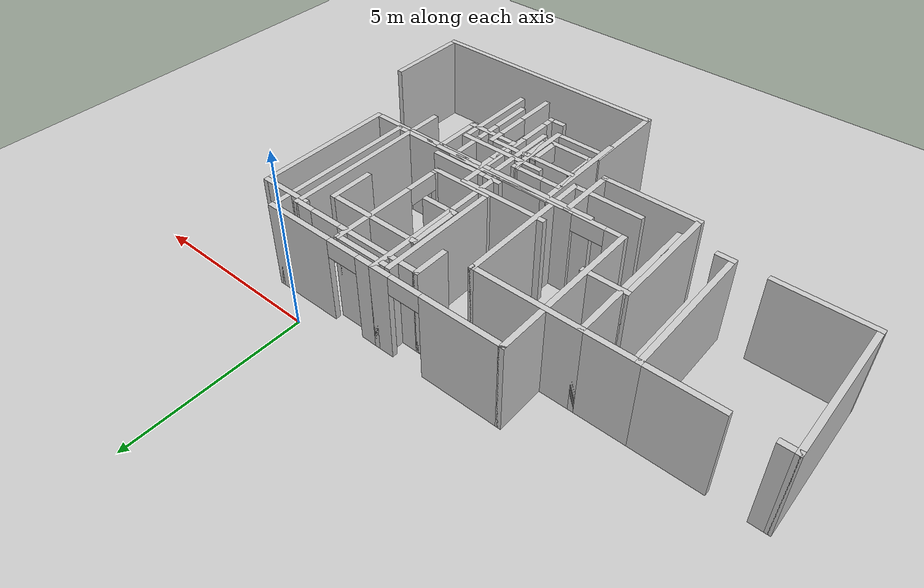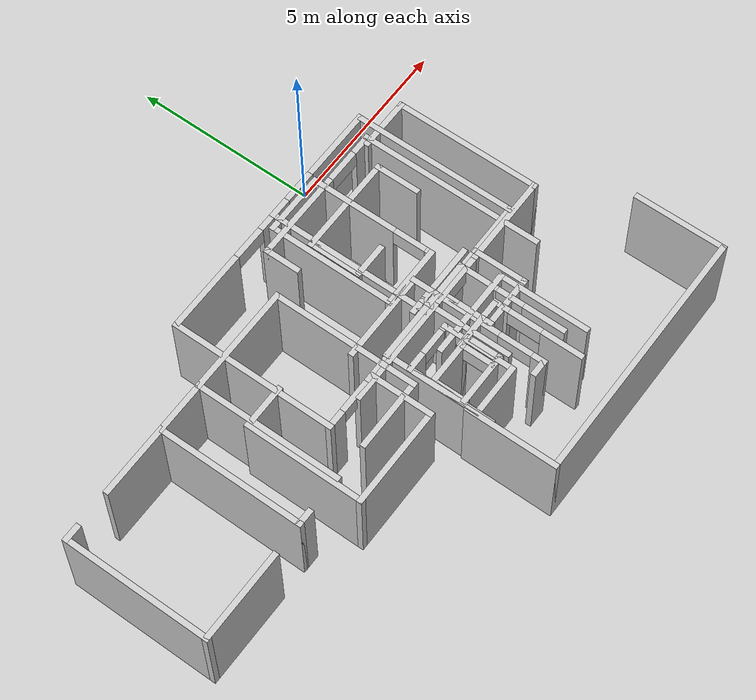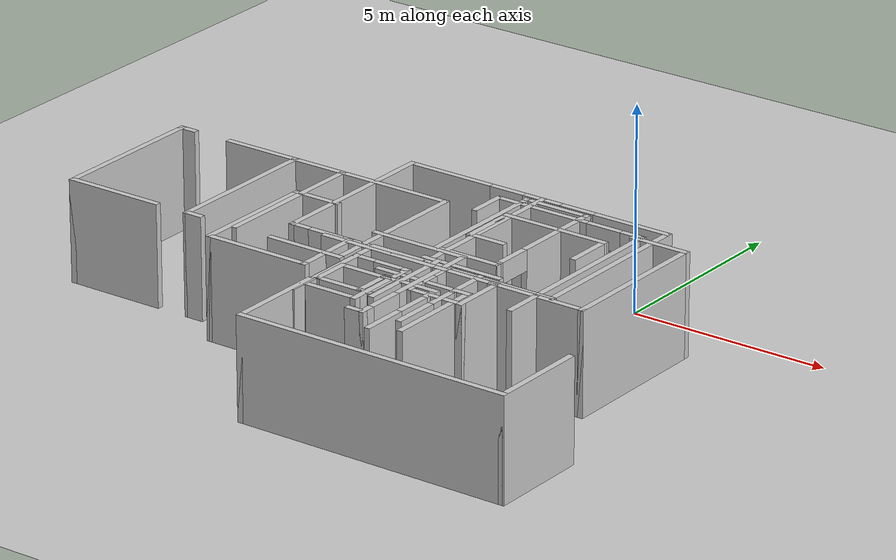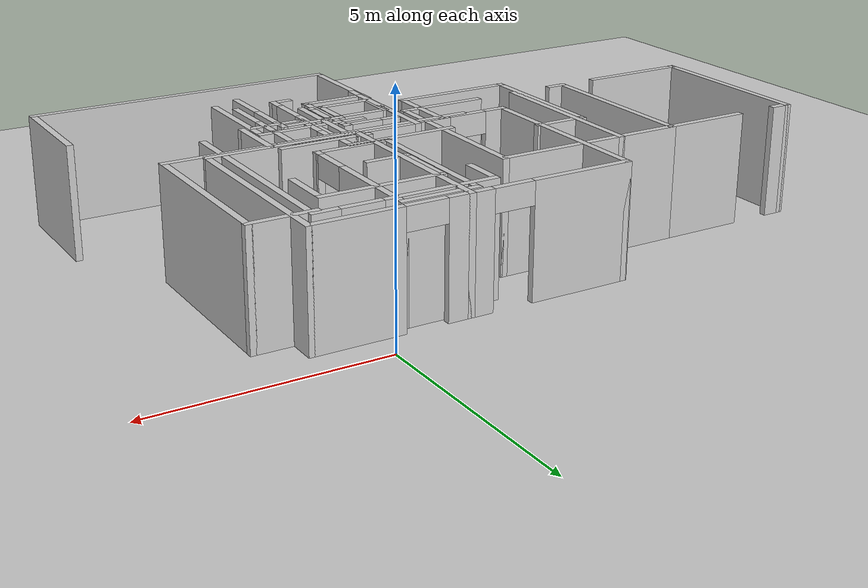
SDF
<sdf version="1.9">
 <world name="default">
  <model name="ground_plane">
   <static>true</static>
   <link name="link">
    <collision name="collision">
     <geometry><plane><normal>0 0 1</normal><size>100 100</size></plane></geometry>
     <surface><friction><ode><mu>100</mu><mu2>50</mu2></ode></friction></surface>
    </collision>
    <visual name="visual">
     <cast_shadows>false</cast_shadows>
     <geometry><plane><normal>0 0 1</normal><size>100 100</size></plane></geometry>
     <material><diffuse>0.8 0.8 0.8 1</diffuse></material>
    </visual>
   </link>
  </model>
  <model name="cma_escritorio">
   <pose>-7.3949999999999996 -4.04 0 0 0 0</pose>
   <link name="Wall_11">
    <collision name="Wall_11_Collision">
     <geometry><box><size>2 0.14999999999999999 2.5</size></box></geometry>
     <pose>0 0 1.25 0 0 0</pose>
    </collision>
    <visual name="Wall_11_Visual">
     <pose>0 0 1.25 0 0 0</pose>
     <geometry><box><size>2 0.14999999999999999 2.5</size></box></geometry>
     <material><diffuse>0.8 0.8 0.8 1</diffuse><ambient>1 1 1 1</ambient></material>
    </visual>
    <pose>-1.3999999999999999 1.9299999999999999 0 0 0 3.1415899999999999</pose>
   </link>
   <link name="Wall_2">
    <collision name="Wall_2_Collision">
     <geometry><box><size>4 0.14999999999999999 2.5</size></box></geometry>
     <pose>0 0 1.25 0 0 0</pose>
    </collision>
    <visual name="Wall_2_Visual">
     <pose>0 0 1.25 0 0 0</pose>
     <geometry><box><size>4 0.14999999999999999 2.5</size></box></geometry>
     <material><diffuse>0.8 0.8 0.8 1</diffuse><ambient>1 1 1 1</ambient></material>
    </visual>
    <pose>0.875 0.0050000000000000001 0 0 0 1.5708</pose>
   </link>
   <link name="Wall_25">
    <collision name="Wall_25_Collision">
     <geometry><box><size>2.5 0.14999999999999999 2.5</size></box></geometry>
     <pose>0 0 1.25 0 0 0</pose>
    </collision>
    <visual name="Wall_25_Visual">
     <pose>0 0 1.25 0 0 0</pose>
     <geometry><box><size>2.5 0.14999999999999999 2.5</size></box></geometry>
     <material><diffuse>0.8 0.8 0.8 1</diffuse><ambient>1 1 1 1</ambient></material>
    </visual>
    <pose>-2.5499999999999998 -1.9299999999999999 0 0 0 3.1415899999999999</pose>
   </link>
   <link name="Wall_26">
    <collision name="Wall_26_Collision">
     <geometry><box><size>4 0.14999999999999999 2.5</size></box></geometry>
     <pose>0 0 1.25 0 0 0</pose>
    </collision>
    <visual name="Wall_26_Visual">
     <pose>0 0 1.25 0 0 0</pose>
     <geometry><box><size>4 0.14999999999999999 2.5</size></box></geometry>
     <material><diffuse>0.8 0.8 0.8 1</diffuse><ambient>1 1 1 1</ambient></material>
    </visual>
    <pose>-3.7250000000000001 -0.0050000000000000001 0 0 0 1.5708</pose>
   </link>
   <link name="Wall_27">
    <collision name="Wall_27_Collision">
     <geometry><box><size>0.5 0.14999999999999999 2.5</size></box></geometry>
     <pose>0 0 1.25 0 0 0</pose>
    </collision>
    <visual name="Wall_27_Visual">
     <pose>0 0 1.25 0 0 0</pose>
     <geometry><box><size>0.5 0.14999999999999999 2.5</size></box></geometry>
     <material><diffuse>0.8 0.8 0.8 1</diffuse><ambient>1 1 1 1</ambient></material>
    </visual>
    <pose>-3.5499999999999998 1.9199999999999999 0 0 0 0</pose>
   </link>
   <link name="Wall_3">
    <collision name="Wall_3_Collision">
     <geometry><box><size>3 0.14999999999999999 2.5</size></box></geometry>
     <pose>0 0 1.25 0 0 0</pose>
    </collision>
    <visual name="Wall_3_Visual">
     <pose>0 0 1.25 0 0 0</pose>
     <geometry><box><size>3 0.14999999999999999 2.5</size></box></geometry>
     <material><diffuse>0.8 0.8 0.8 1</diffuse><ambient>1 1 1 1</ambient></material>
    </visual>
    <pose>2.2999999999999998 1.9299999999999999 0 0 0 0</pose>
   </link>
   <link name="Wall_4">
    <collision name="Wall_4_Collision">
     <geometry><box><size>4 0.14999999999999999 2.5</size></box></geometry>
     <pose>0 0 1.25 0 0 0</pose>
    </collision>
    <visual name="Wall_4_Visual">
     <pose>0 0 1.25 0 0 0</pose>
     <geometry><box><size>4 0.14999999999999999 2.5</size></box></geometry>
     <material><diffuse>0.8 0.8 0.8 1</diffuse><ambient>1 1 1 1</ambient></material>
    </visual>
    <pose>3.7250000000000001 0.0050000000000000001 0 0 0 -1.5708</pose>
   </link>
   <link name="Wall_5">
    <collision name="Wall_5_Collision">
     <geometry><box><size>2 0.14999999999999999 2.5</size></box></geometry>
     <pose>0 0 1.25 0 0 0</pose>
    </collision>
    <visual name="Wall_5_Visual">
     <pose>0 0 1.25 0 0 0</pose>
     <geometry><box><size>2 0.14999999999999999 2.5</size></box></geometry>
     <material><diffuse>0.8 0.8 0.8 1</diffuse><ambient>1 1 1 1</ambient></material>
    </visual>
    <pose>2.7999999999999998 -1.9199999999999999 0 0 0 3.1415899999999999</pose>
   </link>
   <link name="Wall_7">
    <collision name="Wall_7_Collision">
     <geometry><box><size>1.5 0.14999999999999999 2.5</size></box></geometry>
     <pose>0 0 1.25 0 0 0</pose>
    </collision>
    <visual name="Wall_7_Visual">
     <pose>0 0 1.25 0 0 0</pose>
     <geometry><box><size>1.5 0.14999999999999999 2.5</size></box></geometry>
     <material><diffuse>0.8 0.8 0.8 1</diffuse><ambient>1 1 1 1</ambient></material>
    </visual>
    <pose>0.20000000000000001 1.9299999999999999 0 0 0 3.1415899999999999</pose>
   </link>
   <link name="Wall_8">
    <collision name="Wall_8_Collision">
     <geometry><box><size>4 0.14999999999999999 2.5</size></box></geometry>
     <pose>0 0 1.25 0 0 0</pose>
    </collision>
    <visual name="Wall_8_Visual">
     <pose>0 0 1.25 0 0 0</pose>
     <geometry><box><size>4 0.14999999999999999 2.5</size></box></geometry>
     <material><diffuse>0.8 0.8 0.8 1</diffuse><ambient>1 1 1 1</ambient></material>
    </visual>
    <pose>-0.47499999999999998 0.0050000000000000001 0 0 0 -1.5708</pose>
   </link>
   <link name="Wall_9">
    <collision name="Wall_9_Collision">
     <geometry><box><size>0.5 0.14999999999999999 2.5</size></box></geometry>
     <pose>0 0 1.25 0 0 0</pose>
    </collision>
    <visual name="Wall_9_Visual">
     <pose>0 0 1.25 0 0 0</pose>
     <geometry><box><size>0.5 0.14999999999999999 2.5</size></box></geometry>
     <material><diffuse>0.8 0.8 0.8 1</diffuse><ambient>1 1 1 1</ambient></material>
    </visual>
    <pose>-0.29999999999999999 -1.9199999999999999 0 0 0 0</pose>
   </link>
   <static>true</static>
  </model>
  <model name="cma_banheiro">
   <pose>-0.81999999999999995 -2.5950000000000002 0 0 0 0</pose>
   <link name="Wall_0">
    <collision name="Wall_0_Collision">
     <geometry><box><size>1 0.14999999999999999 2.5</size></box></geometry>
     <pose>0 0 1.25 0 0 0</pose>
    </collision>
    <visual name="Wall_0_Visual">
     <pose>0 0 1.25 0 0 0</pose>
     <geometry><box><size>1 0.14999999999999999 2.5</size></box></geometry>
     <material><diffuse>0.8 0.8 0.8 1</diffuse><ambient>1 1 1 1</ambient></material>
    </visual>
    <pose>-0.875 -0.67500000000000004 0 0 0 3.1415899999999999</pose>
   </link>
   <link name="Wall_1">
    <collision name="Wall_1_Collision">
     <geometry><box><size>1.5 0.14999999999999999 2.5</size></box></geometry>
     <pose>0 0 1.25 0 0 0</pose>
    </collision>
    <visual name="Wall_1_Visual">
     <pose>0 0 1.25 0 0 0</pose>
     <geometry><box><size>1.5 0.14999999999999999 2.5</size></box></geometry>
     <material><diffuse>0.8 0.8 0.8 1</diffuse><ambient>1 1 1 1</ambient></material>
    </visual>
    <pose>-1.3 0 0 0 0 1.5708</pose>
   </link>
   <link name="Wall_2">
    <collision name="Wall_2_Collision">
     <geometry><box><size>2.75 0.14999999999999999 2.5</size></box></geometry>
     <pose>0 0 1.25 0 0 0</pose>
    </collision>
    <visual name="Wall_2_Visual">
     <pose>0 0 1.25 0 0 0</pose>
     <geometry><box><size>2.75 0.14999999999999999 2.5</size></box></geometry>
     <material><diffuse>0.8 0.8 0.8 1</diffuse><ambient>1 1 1 1</ambient></material>
    </visual>
    <pose>0 0.67500000000000004 0 0 0 0</pose>
   </link>
   <link name="Wall_4">
    <collision name="Wall_4_Collision">
     <geometry><box><size>1.25 0.14999999999999999 2.5</size></box></geometry>
     <pose>0 0 1.25 0 0 0</pose>
    </collision>
    <visual name="Wall_4_Visual">
     <pose>0 0 1.25 0 0 0</pose>
     <geometry><box><size>1.25 0.14999999999999999 2.5</size></box></geometry>
     <material><diffuse>0.8 0.8 0.8 1</diffuse><ambient>1 1 1 1</ambient></material>
    </visual>
    <pose>1.3 0.125 0 0 0 -1.5708</pose>
   </link>
   <static>true</static>
  </model>
  <model name="cma_varanda1">
   <pose>-1.49 -2.6150000000000002 0 0 0 0</pose>
   <link name="Wall_0">
    <pose>0.80000000000000004 0 0 0 0 -1.5708</pose>
    <visual name="Wall_0_Visual_0">
     <pose>-0.55249999999999999 0 1.25 0 0 0</pose>
     <geometry><box><size>2.395 0.14999999999999999 2.5</size></box></geometry>
     <material><diffuse>0.8 0.8 0.8 1</diffuse><ambient>1 1 1 1</ambient></material>
    </visual>
    <collision name="Wall_0_Collision_0">
     <geometry><box><size>2.395 0.14999999999999999 2.5</size></box></geometry>
     <pose>-0.55249999999999999 0 1.25 0 0 0</pose>
    </collision>
    <visual name="Wall_0_Visual_1">
     <pose>1.6375 0 1.25 0 0 0</pose>
     <geometry><box><size>0.22500000000000001 0.14999999999999999 2.5</size></box></geometry>
     <material><diffuse>0.8 0.8 0.8 1</diffuse><ambient>1 1 1 1</ambient></material>
    </visual>
    <collision name="Wall_0_Collision_1">
     <geometry><box><size>0.22500000000000001 0.14999999999999999 2.5</size></box></geometry>
     <pose>1.6375 0 1.25 0 0 0</pose>
    </collision>
    <visual name="Wall_0_Visual_2">
     <pose>1.085 0 2.25 0 0 0</pose>
     <geometry><box><size>0.88 0.14999999999999999 0.5</size></box></geometry>
     <material><diffuse>0.8 0.8 0.8 1</diffuse><ambient>1 1 1 1</ambient></material>
    </visual>
    <collision name="Wall_0_Collision_2">
     <geometry><box><size>0.88 0.14999999999999999 0.5</size></box></geometry>
     <pose>1.085 0 2.25 0 0 0</pose>
    </collision>
   </link>
   <link name="Wall_1">
    <collision name="Wall_1_Collision">
     <geometry><box><size>1.75 0.14999999999999999 2.5</size></box></geometry>
     <pose>0 0 1.25 0 0 0</pose>
    </collision>
    <visual name="Wall_1_Visual">
     <pose>0 0 1.25 0 0 0</pose>
     <geometry><box><size>1.75 0.14999999999999999 2.5</size></box></geometry>
     <material><diffuse>0.8 0.8 0.8 1</diffuse><ambient>1 1 1 1</ambient></material>
    </visual>
    <pose>0 -1.675 0 0 0 3.1415899999999999</pose>
   </link>
   <link name="Wall_2">
    <collision name="Wall_2_Collision">
     <geometry><box><size>3.5 0.14999999999999999 2.5</size></box></geometry>
     <pose>0 0 1.25 0 0 0</pose>
    </collision>
    <visual name="Wall_2_Visual">
     <pose>0 0 1.25 0 0 0</pose>
     <geometry><box><size>3.5 0.14999999999999999 2.5</size></box></geometry>
     <material><diffuse>0.8 0.8 0.8 1</diffuse><ambient>1 1 1 1</ambient></material>
    </visual>
    <pose>-0.80000000000000004 0 0 0 0 1.5708</pose>
   </link>
   <link name="Wall_3">
    <collision name="Wall_3_Collision">
     <geometry><box><size>1.75 0.14999999999999999 2.5</size></box></geometry>
     <pose>0 0 1.25 0 0 0</pose>
    </collision>
    <visual name="Wall_3_Visual">
     <pose>0 0 1.25 0 0 0</pose>
     <geometry><box><size>1.75 0.14999999999999999 2.5</size></box></geometry>
     <material><diffuse>0.8 0.8 0.8 1</diffuse><ambient>1 1 1 1</ambient></material>
    </visual>
    <pose>0 1.675 0 0 0 0</pose>
   </link>
   <static>true</static>
  </model>
  <model name="cma_quartos">
   <pose>-2.6549999999999998 -3.7149999999999999 0 0 0 0</pose>
   <link name="Wall_0">
    <collision name="Wall_0_Collision">
     <geometry><box><size>4.5 0.14999999999999999 2.5</size></box></geometry>
     <pose>0 0 1.25 0 0 0</pose>
    </collision>
    <visual name="Wall_0_Visual">
     <pose>0 0 1.25 0 0 0</pose>
     <geometry><box><size>4.5 0.14999999999999999 2.5</size></box></geometry>
     <material><diffuse>0.8 0.8 0.8 1</diffuse><ambient>1 1 1 1</ambient></material>
    </visual>
    <pose>0.64500000000000002 0.81000000000000005 0 0 0 -1.5708</pose>
   </link>
   <link name="Wall_1">
    <pose>-1.155 -1.365 0 0 0 3.1415899999999999</pose>
    <visual name="Wall_1_Visual_0">
     <pose>-0.72250000000000003 0 1.25 0 0 0</pose>
     <geometry><box><size>2.3050000000000002 0.14999999999999999 2.5</size></box></geometry>
     <material><diffuse>0.8 0.8 0.8 1</diffuse><ambient>1 1 1 1</ambient></material>
    </visual>
    <collision name="Wall_1_Collision_0">
     <geometry><box><size>2.3050000000000002 0.14999999999999999 2.5</size></box></geometry>
     <pose>-0.72250000000000003 0 1.25 0 0 0</pose>
    </collision>
    <visual name="Wall_1_Visual_1">
     <pose>1.6025 0 1.25 0 0 0</pose>
     <geometry><box><size>0.54500000000000004 0.14999999999999999 2.5</size></box></geometry>
     <material><diffuse>0.8 0.8 0.8 1</diffuse><ambient>1 1 1 1</ambient></material>
    </visual>
    <collision name="Wall_1_Collision_1">
     <geometry><box><size>0.54500000000000004 0.14999999999999999 2.5</size></box></geometry>
     <pose>1.6025 0 1.25 0 0 0</pose>
    </collision>
    <visual name="Wall_1_Visual_2">
     <pose>0.88 0 2.25 0 0 0</pose>
     <geometry><box><size>0.90000000000000002 0.14999999999999999 0.5</size></box></geometry>
     <material><diffuse>0.8 0.8 0.8 1</diffuse><ambient>1 1 1 1</ambient></material>
    </visual>
    <collision name="Wall_1_Collision_2">
     <geometry><box><size>0.90000000000000002 0.14999999999999999 0.5</size></box></geometry>
     <pose>0.88 0 2.25 0 0 0</pose>
    </collision>
   </link>
   <link name="Wall_10">
    <collision name="Wall_10_Collision">
     <geometry><box><size>1.75 0.14999999999999999 2.5</size></box></geometry>
     <pose>0 0 1.25 0 0 0</pose>
    </collision>
    <visual name="Wall_10_Visual">
     <pose>0 0 1.25 0 0 0</pose>
     <geometry><box><size>1.75 0.14999999999999999 2.5</size></box></geometry>
     <material><diffuse>0.8 0.8 0.8 1</diffuse><ambient>1 1 1 1</ambient></material>
    </visual>
    <pose>-1.395 -2.1850000000000001 0 0 0 -1.5708</pose>
   </link>
   <link name="Wall_11">
    <collision name="Wall_11_Collision">
     <geometry><box><size>2.75 0.14999999999999999 2.5</size></box></geometry>
     <pose>0 0 1.25 0 0 0</pose>
    </collision>
    <visual name="Wall_11_Visual">
     <pose>0 0 1.25 0 0 0</pose>
     <geometry><box><size>2.75 0.14999999999999999 2.5</size></box></geometry>
     <material><diffuse>0.8 0.8 0.8 1</diffuse><ambient>1 1 1 1</ambient></material>
    </visual>
    <pose>-2.6949999999999998 -2.9849999999999999 0 0 0 3.1415899999999999</pose>
   </link>
   <link name="Wall_12">
    <collision name="Wall_12_Collision">
     <geometry><box><size>3.25 0.14999999999999999 2.5</size></box></geometry>
     <pose>0 0 1.25 0 0 0</pose>
    </collision>
    <visual name="Wall_12_Visual">
     <pose>0 0 1.25 0 0 0</pose>
     <geometry><box><size>3.25 0.14999999999999999 2.5</size></box></geometry>
     <material><diffuse>0.8 0.8 0.8 1</diffuse><ambient>1 1 1 1</ambient></material>
    </visual>
    <pose>-3.9950000000000001 -1.4350000000000001 0 0 0 1.5708</pose>
   </link>
   <link name="Wall_13">
    <collision name="Wall_13_Collision">
     <geometry><box><size>1.25 0.14999999999999999 2.5</size></box></geometry>
     <pose>0 0 1.25 0 0 0</pose>
    </collision>
    <visual name="Wall_13_Visual">
     <pose>0 0 1.25 0 0 0</pose>
     <geometry><box><size>1.25 0.14999999999999999 2.5</size></box></geometry>
     <material><diffuse>0.8 0.8 0.8 1</diffuse><ambient>1 1 1 1</ambient></material>
    </visual>
    <pose>-3.4449999999999998 0.115 0 0 0 0</pose>
   </link>
   <link name="Wall_2">
    <collision name="Wall_2_Collision">
     <geometry><box><size>4.5 0.14999999999999999 2.5</size></box></geometry>
     <pose>0 0 1.25 0 0 0</pose>
    </collision>
    <visual name="Wall_2_Visual">
     <pose>0 0 1.25 0 0 0</pose>
     <geometry><box><size>4.5 0.14999999999999999 2.5</size></box></geometry>
     <material><diffuse>0.8 0.8 0.8 1</diffuse><ambient>1 1 1 1</ambient></material>
    </visual>
    <pose>-2.9550000000000001 0.81000000000000005 0 0 0 1.5708</pose>
   </link>
   <link name="Wall_3">
    <pose>-1.155 2.9849999999999999 0 0 0 0</pose>
    <visual name="Wall_3_Visual_0">
     <pose>-0.73250000000000004 0 1.25 0 0 0</pose>
     <geometry><box><size>2.2850000000000001 0.14999999999999999 2.5</size></box></geometry>
     <material><diffuse>0.8 0.8 0.8 1</diffuse><ambient>1 1 1 1</ambient></material>
    </visual>
    <collision name="Wall_3_Collision_0">
     <geometry><box><size>2.2850000000000001 0.14999999999999999 2.5</size></box></geometry>
     <pose>-0.73250000000000004 0 1.25 0 0 0</pose>
    </collision>
    <visual name="Wall_3_Visual_1">
     <pose>1.5925 0 1.25 0 0 0</pose>
     <geometry><box><size>0.56499999999999995 0.14999999999999999 2.5</size></box></geometry>
     <material><diffuse>0.8 0.8 0.8 1</diffuse><ambient>1 1 1 1</ambient></material>
    </visual>
    <collision name="Wall_3_Collision_1">
     <geometry><box><size>0.56499999999999995 0.14999999999999999 2.5</size></box></geometry>
     <pose>1.5925 0 1.25 0 0 0</pose>
    </collision>
    <visual name="Wall_3_Visual_2">
     <pose>0.85999999999999999 0 2.25 0 0 0</pose>
     <geometry><box><size>0.90000000000000002 0.14999999999999999 0.5</size></box></geometry>
     <material><diffuse>0.8 0.8 0.8 1</diffuse><ambient>1 1 1 1</ambient></material>
    </visual>
    <collision name="Wall_3_Collision_2">
     <geometry><box><size>0.90000000000000002 0.14999999999999999 0.5</size></box></geometry>
     <pose>0.85999999999999999 0 2.25 0 0 0</pose>
    </collision>
   </link>
   <link name="Wall_6">
    <pose>2.3199999999999998 2.9849999999999999 0 0 0 0</pose>
    <visual name="Wall_6_Visual_0">
     <pose>-1.4575 0 1.25 0 0 0</pose>
     <geometry><box><size>0.58499999999999996 0.14999999999999999 2.5</size></box></geometry>
     <material><diffuse>0.8 0.8 0.8 1</diffuse><ambient>1 1 1 1</ambient></material>
    </visual>
    <collision name="Wall_6_Collision_0">
     <geometry><box><size>0.58499999999999996 0.14999999999999999 2.5</size></box></geometry>
     <pose>-1.4575 0 1.25 0 0 0</pose>
    </collision>
    <visual name="Wall_6_Visual_1">
     <pose>0.74250000000000005 0 1.25 0 0 0</pose>
     <geometry><box><size>2.0150000000000001 0.14999999999999999 2.5</size></box></geometry>
     <material><diffuse>0.8 0.8 0.8 1</diffuse><ambient>1 1 1 1</ambient></material>
    </visual>
    <collision name="Wall_6_Collision_1">
     <geometry><box><size>2.0150000000000001 0.14999999999999999 2.5</size></box></geometry>
     <pose>0.74250000000000005 0 1.25 0 0 0</pose>
    </collision>
    <visual name="Wall_6_Visual_2">
     <pose>-0.71499999999999997 0 2.25 0 0 0</pose>
     <geometry><box><size>0.90000000000000002 0.14999999999999999 0.5</size></box></geometry>
     <material><diffuse>0.8 0.8 0.8 1</diffuse><ambient>1 1 1 1</ambient></material>
    </visual>
    <collision name="Wall_6_Collision_2">
     <geometry><box><size>0.90000000000000002 0.14999999999999999 0.5</size></box></geometry>
     <pose>-0.71499999999999997 0 2.25 0 0 0</pose>
    </collision>
   </link>
   <link name="Wall_7">
    <collision name="Wall_7_Collision">
     <geometry><box><size>4.5 0.14999999999999999 2.5</size></box></geometry>
     <pose>0 0 1.25 0 0 0</pose>
    </collision>
    <visual name="Wall_7_Visual">
     <pose>0 0 1.25 0 0 0</pose>
     <geometry><box><size>4.5 0.14999999999999999 2.5</size></box></geometry>
     <material><diffuse>0.8 0.8 0.8 1</diffuse><ambient>1 1 1 1</ambient></material>
    </visual>
    <pose>3.9950000000000001 0.81000000000000005 0 0 0 -1.5708</pose>
   </link>
   <link name="Wall_8">
    <collision name="Wall_8_Collision">
     <geometry><box><size>3.5 0.14999999999999999 2.5</size></box></geometry>
     <pose>0 0 1.25 0 0 0</pose>
    </collision>
    <visual name="Wall_8_Visual">
     <pose>0 0 1.25 0 0 0</pose>
     <geometry><box><size>3.5 0.14999999999999999 2.5</size></box></geometry>
     <material><diffuse>0.8 0.8 0.8 1</diffuse><ambient>1 1 1 1</ambient></material>
    </visual>
    <pose>2.3199999999999998 -1.365 0 0 0 3.1415899999999999</pose>
   </link>
   <static>true</static>
  </model>
  <model name="cma_parede_t">
   <pose>-1.1850000000000001 -6.0449999999999999 0 0 0 0</pose>
   <link name="Wall_15">
    <collision name="Wall_15_Collision">
     <geometry><box><size>2.5 0.14999999999999999 2.5</size></box></geometry>
     <pose>0 0 1.25 0 0 0</pose>
    </collision>
    <visual name="Wall_15_Visual">
     <pose>0 0 1.25 0 0 0</pose>
     <geometry><box><size>2.5 0.14999999999999999 2.5</size></box></geometry>
     <material><diffuse>0.8 0.8 0.8 1</diffuse><ambient>1 1 1 1</ambient></material>
    </visual>
    <pose>-0.625 0 0 0 0 1.5708</pose>
   </link>
   <link name="Wall_16">
    <collision name="Wall_16_Collision">
     <geometry><box><size>0.5 0.14999999999999999 2.5</size></box></geometry>
     <pose>0 0 1.25 0 0 0</pose>
    </collision>
    <visual name="Wall_16_Visual">
     <pose>0 0 1.25 0 0 0</pose>
     <geometry><box><size>0.5 0.14999999999999999 2.5</size></box></geometry>
     <material><diffuse>0.8 0.8 0.8 1</diffuse><ambient>1 1 1 1</ambient></material>
    </visual>
    <pose>-0.80000000000000004 1.175 0 0 0 3.1415899999999999</pose>
   </link>
   <link name="Wall_18">
    <collision name="Wall_18_Collision">
     <geometry><box><size>1.75 0.14999999999999999 2.5</size></box></geometry>
     <pose>0 0 1.25 0 0 0</pose>
    </collision>
    <visual name="Wall_18_Visual">
     <pose>0 0 1.25 0 0 0</pose>
     <geometry><box><size>1.75 0.14999999999999999 2.5</size></box></geometry>
     <material><diffuse>0.8 0.8 0.8 1</diffuse><ambient>1 1 1 1</ambient></material>
    </visual>
    <pose>0.17499999999999999 1.175 0 0 0 0</pose>
   </link>
   <static>true</static>
  </model>
  <model name="cma_parede_L">
   <pose>-1.2150000000000001 -3.2450000000000001 0 0 0 0</pose>
   <link name="Wall_0">
    <pose>0 -1.925 0 0 0 0</pose>
    <visual name="Wall_0_Visual_0">
     <pose>-1.9850000000000001 0 1.25 0 0 0</pose>
     <geometry><box><size>3.0299999999999998 0.14999999999999999 2.5</size></box></geometry>
     <material><diffuse>0.8 0.8 0.8 1</diffuse><ambient>1 1 1 1</ambient></material>
    </visual>
    <collision name="Wall_0_Collision_0">
     <geometry><box><size>3.0299999999999998 0.14999999999999999 2.5</size></box></geometry>
     <pose>-1.9850000000000001 0 1.25 0 0 0</pose>
    </collision>
    <visual name="Wall_0_Visual_1">
     <pose>2.2400000000000002 0 1.25 0 0 0</pose>
     <geometry><box><size>2.52 0.14999999999999999 2.5</size></box></geometry>
     <material><diffuse>0.8 0.8 0.8 1</diffuse><ambient>1 1 1 1</ambient></material>
    </visual>
    <collision name="Wall_0_Collision_1">
     <geometry><box><size>2.52 0.14999999999999999 2.5</size></box></geometry>
     <pose>2.2400000000000002 0 1.25 0 0 0</pose>
    </collision>
    <visual name="Wall_0_Visual_2">
     <pose>0.255 0 2.25 0 0 0</pose>
     <geometry><box><size>1.45 0.14999999999999999 0.5</size></box></geometry>
     <material><diffuse>0.8 0.8 0.8 1</diffuse><ambient>1 1 1 1</ambient></material>
    </visual>
    <collision name="Wall_0_Collision_2">
     <geometry><box><size>1.45 0.14999999999999999 0.5</size></box></geometry>
     <pose>0.255 0 2.25 0 0 0</pose>
    </collision>
   </link>
   <link name="Wall_1">
    <collision name="Wall_1_Collision">
     <geometry><box><size>4 0.14999999999999999 2.5</size></box></geometry>
     <pose>0 0 1.25 0 0 0</pose>
    </collision>
    <visual name="Wall_1_Visual">
     <pose>0 0 1.25 0 0 0</pose>
     <geometry><box><size>4 0.14999999999999999 2.5</size></box></geometry>
     <material><diffuse>0.8 0.8 0.8 1</diffuse><ambient>1 1 1 1</ambient></material>
    </visual>
    <pose>3.4249999999999998 0 0 0 0 1.5708</pose>
   </link>
   <link name="Wall_2">
    <collision name="Wall_2_Collision">
     <geometry><box><size>1.5 0.14999999999999999 2.5</size></box></geometry>
     <pose>0 0 1.25 0 0 0</pose>
    </collision>
    <visual name="Wall_2_Visual">
     <pose>0 0 1.25 0 0 0</pose>
     <geometry><box><size>1.5 0.14999999999999999 2.5</size></box></geometry>
     <material><diffuse>0.8 0.8 0.8 1</diffuse><ambient>1 1 1 1</ambient></material>
    </visual>
    <pose>2.75 1.925 0 0 0 3.1415899999999999</pose>
   </link>
   <static>true</static>
  </model>
  <model name="cma_lavabo">
   <pose>-0.72499999999999998 -5.7750000000000004 0 0 0 0</pose>
   <link name="Wall_4">
    <pose>-0.67500000000000004 0 0 0 0 1.5708</pose>
    <visual name="Wall_4_Visual_0">
     <pose>-0.63500000000000001 0 1.25 0 0 0</pose>
     <geometry><box><size>0.23000000000000001 0.14999999999999999 2.5</size></box></geometry>
     <material><diffuse>0.8 0.8 0.8 1</diffuse><ambient>1 1 1 1</ambient></material>
    </visual>
    <collision name="Wall_4_Collision_0">
     <geometry><box><size>0.23000000000000001 0.14999999999999999 2.5</size></box></geometry>
     <pose>-0.63500000000000001 0 1.25 0 0 0</pose>
    </collision>
    <visual name="Wall_4_Visual_1">
     <pose>0.47999999999999998 0 1.25 0 0 0</pose>
     <geometry><box><size>0.54000000000000004 0.14999999999999999 2.5</size></box></geometry>
     <material><diffuse>0.8 0.8 0.8 1</diffuse><ambient>1 1 1 1</ambient></material>
    </visual>
    <collision name="Wall_4_Collision_1">
     <geometry><box><size>0.54000000000000004 0.14999999999999999 2.5</size></box></geometry>
     <pose>0.47999999999999998 0 1.25 0 0 0</pose>
    </collision>
    <visual name="Wall_4_Visual_2">
     <pose>-0.155 0 2.25 0 0 0</pose>
     <geometry><box><size>0.72999999999999998 0.14999999999999999 0.5</size></box></geometry>
     <material><diffuse>0.8 0.8 0.8 1</diffuse><ambient>1 1 1 1</ambient></material>
    </visual>
    <collision name="Wall_4_Collision_2">
     <geometry><box><size>0.72999999999999998 0.14999999999999999 0.5</size></box></geometry>
     <pose>-0.155 0 2.25 0 0 0</pose>
    </collision>
   </link>
   <link name="Wall_5">
    <collision name="Wall_5_Collision">
     <geometry><box><size>1.5 0.14999999999999999 2.5</size></box></geometry>
     <pose>0 0 1.25 0 0 0</pose>
    </collision>
    <visual name="Wall_5_Visual">
     <pose>0 0 1.25 0 0 0</pose>
     <geometry><box><size>1.5 0.14999999999999999 2.5</size></box></geometry>
     <material><diffuse>0.8 0.8 0.8 1</diffuse><ambient>1 1 1 1</ambient></material>
    </visual>
    <pose>0 0.67500000000000004 0 0 0 0</pose>
   </link>
   <link name="Wall_6">
    <collision name="Wall_6_Collision">
     <geometry><box><size>1.5 0.14999999999999999 2.5</size></box></geometry>
     <pose>0 0 1.25 0 0 0</pose>
    </collision>
    <visual name="Wall_6_Visual">
     <pose>0 0 1.25 0 0 0</pose>
     <geometry><box><size>1.5 0.14999999999999999 2.5</size></box></geometry>
     <material><diffuse>0.8 0.8 0.8 1</diffuse><ambient>1 1 1 1</ambient></material>
    </visual>
    <pose>0.67500000000000004 0 0 0 0 -1.5708</pose>
   </link>
   <link name="Wall_7">
    <collision name="Wall_7_Collision">
     <geometry><box><size>1.5 0.14999999999999999 2.5</size></box></geometry>
     <pose>0 0 1.25 0 0 0</pose>
    </collision>
    <visual name="Wall_7_Visual">
     <pose>0 0 1.25 0 0 0</pose>
     <geometry><box><size>1.5 0.14999999999999999 2.5</size></box></geometry>
     <material><diffuse>0.8 0.8 0.8 1</diffuse><ambient>1 1 1 1</ambient></material>
    </visual>
    <pose>0 -0.67500000000000004 0 0 0 3.1415899999999999</pose>
   </link>
   <static>true</static>
  </model>
  <model name="cma_L2">
   <pose>-1.415 -7.1150000000000002 0 0 0 0</pose>
   <link name="Wall_10">
    <collision name="Wall_10_Collision">
     <geometry><box><size>2.5 0.14999999999999999 2.5</size></box></geometry>
     <pose>0 0 1.25 0 0 0</pose>
    </collision>
    <visual name="Wall_10_Visual">
     <pose>0 0 1.25 0 0 0</pose>
     <geometry><box><size>2.5 0.14999999999999999 2.5</size></box></geometry>
     <material><diffuse>0.8 0.8 0.8 1</diffuse><ambient>1 1 1 1</ambient></material>
    </visual>
    <pose>1.175 0 0 0 0 -1.5708</pose>
   </link>
   <link name="Wall_9">
    <collision name="Wall_9_Collision">
     <geometry><box><size>2.5 0.14999999999999999 2.5</size></box></geometry>
     <pose>0 0 1.25 0 0 0</pose>
    </collision>
    <visual name="Wall_9_Visual">
     <pose>0 0 1.25 0 0 0</pose>
     <geometry><box><size>2.5 0.14999999999999999 2.5</size></box></geometry>
     <material><diffuse>0.8 0.8 0.8 1</diffuse><ambient>1 1 1 1</ambient></material>
    </visual>
    <pose>0 1.175 0 0 0 0</pose>
   </link>
   <static>true</static>
  </model>
  <model name="cma_L3">
   <pose>-1.5549999999999999 -7.4050000000000002 0 0 0 0</pose>
   <link name="Wall_12">
    <pose>-0.67500000000000004 0.75 0 0 0 1.5708</pose>
    <visual name="Wall_12_Visual_0">
     <pose>-0.46000000000000002 0 1.25 0 0 0</pose>
     <geometry><box><size>0.080000000000000002 0.14999999999999999 2.5</size></box></geometry>
     <material><diffuse>0.8 0.8 0.8 1</diffuse><ambient>1 1 1 1</ambient></material>
    </visual>
    <collision name="Wall_12_Collision_0">
     <geometry><box><size>0.080000000000000002 0.14999999999999999 2.5</size></box></geometry>
     <pose>-0.46000000000000002 0 1.25 0 0 0</pose>
    </collision>
    <visual name="Wall_12_Visual_1">
     <pose>0.40500000000000003 0 1.25 0 0 0</pose>
     <geometry><box><size>0.19 0.14999999999999999 2.5</size></box></geometry>
     <material><diffuse>0.8 0.8 0.8 1</diffuse><ambient>1 1 1 1</ambient></material>
    </visual>
    <collision name="Wall_12_Collision_1">
     <geometry><box><size>0.19 0.14999999999999999 2.5</size></box></geometry>
     <pose>0.40500000000000003 0 1.25 0 0 0</pose>
    </collision>
    <visual name="Wall_12_Visual_2">
     <pose>-0.055 0 2.25 0 0 0</pose>
     <geometry><box><size>0.72999999999999998 0.14999999999999999 0.5</size></box></geometry>
     <material><diffuse>0.8 0.8 0.8 1</diffuse><ambient>1 1 1 1</ambient></material>
    </visual>
    <collision name="Wall_12_Collision_2">
     <geometry><box><size>0.72999999999999998 0.14999999999999999 0.5</size></box></geometry>
     <pose>-0.055 0 2.25 0 0 0</pose>
    </collision>
   </link>
   <link name="Wall_13">
    <collision name="Wall_13_Collision">
     <geometry><box><size>1.5 0.14999999999999999 2.5</size></box></geometry>
     <pose>0 0 1.25 0 0 0</pose>
    </collision>
    <visual name="Wall_13_Visual">
     <pose>0 0 1.25 0 0 0</pose>
     <geometry><box><size>1.5 0.14999999999999999 2.5</size></box></geometry>
     <material><diffuse>0.8 0.8 0.8 1</diffuse><ambient>1 1 1 1</ambient></material>
    </visual>
    <pose>0 1.175 0 0 0 0</pose>
   </link>
   <link name="Wall_14">
    <pose>0.67500000000000004 0 0 0 0 -1.5708</pose>
    <visual name="Wall_14_Visual_0">
     <pose>-1.0175000000000001 0 1.25 0 0 0</pose>
     <geometry><box><size>0.46500000000000002 0.14999999999999999 2.5</size></box></geometry>
     <material><diffuse>0.8 0.8 0.8 1</diffuse><ambient>1 1 1 1</ambient></material>
    </visual>
    <collision name="Wall_14_Collision_0">
     <geometry><box><size>0.46500000000000002 0.14999999999999999 2.5</size></box></geometry>
     <pose>-1.0175000000000001 0 1.25 0 0 0</pose>
    </collision>
    <visual name="Wall_14_Visual_1">
     <pose>0.6825 0 1.25 0 0 0</pose>
     <geometry><box><size>1.135 0.14999999999999999 2.5</size></box></geometry>
     <material><diffuse>0.8 0.8 0.8 1</diffuse><ambient>1 1 1 1</ambient></material>
    </visual>
    <collision name="Wall_14_Collision_1">
     <geometry><box><size>1.135 0.14999999999999999 2.5</size></box></geometry>
     <pose>0.6825 0 1.25 0 0 0</pose>
    </collision>
    <visual name="Wall_14_Visual_2">
     <pose>-0.33500000000000002 0 2.25 0 0 0</pose>
     <geometry><box><size>0.90000000000000002 0.14999999999999999 0.5</size></box></geometry>
     <material><diffuse>0.8 0.8 0.8 1</diffuse><ambient>1 1 1 1</ambient></material>
    </visual>
    <collision name="Wall_14_Collision_2">
     <geometry><box><size>0.90000000000000002 0.14999999999999999 0.5</size></box></geometry>
     <pose>-0.33500000000000002 0 2.25 0 0 0</pose>
    </collision>
   </link>
   <static>true</static>
  </model>
  <model name="cma_U">
   <pose>-0.035000000000000003 -8.4749999999999996 0 0 0 0</pose>
   <link name="Wall_16">
    <collision name="Wall_16_Collision">
     <geometry><box><size>2.5 0.14999999999999999 2.5</size></box></geometry>
     <pose>0 0 1.25 0 0 0</pose>
    </collision>
    <visual name="Wall_16_Visual">
     <pose>0 0 1.25 0 0 0</pose>
     <geometry><box><size>2.5 0.14999999999999999 2.5</size></box></geometry>
     <material><diffuse>0.8 0.8 0.8 1</diffuse><ambient>1 1 1 1</ambient></material>
    </visual>
    <pose>-3.4249999999999998 0 0 0 0 -1.5708</pose>
   </link>
   <link name="Wall_17">
    <collision name="Wall_17_Collision">
     <geometry><box><size>7 0.14999999999999999 2.5</size></box></geometry>
     <pose>0 0 1.25 0 0 0</pose>
    </collision>
    <visual name="Wall_17_Visual">
     <pose>0 0 1.25 0 0 0</pose>
     <geometry><box><size>7 0.14999999999999999 2.5</size></box></geometry>
     <material><diffuse>0.8 0.8 0.8 1</diffuse><ambient>1 1 1 1</ambient></material>
    </visual>
    <pose>0 -1.175 0 0 0 0</pose>
   </link>
   <link name="Wall_18">
    <collision name="Wall_18_Collision">
     <geometry><box><size>2.5 0.14999999999999999 2.5</size></box></geometry>
     <pose>0 0 1.25 0 0 0</pose>
    </collision>
    <visual name="Wall_18_Visual">
     <pose>0 0 1.25 0 0 0</pose>
     <geometry><box><size>2.5 0.14999999999999999 2.5</size></box></geometry>
     <material><diffuse>0.8 0.8 0.8 1</diffuse><ambient>1 1 1 1</ambient></material>
    </visual>
    <pose>3.4249999999999998 0 0 0 0 1.5708</pose>
   </link>
   <static>true</static>
  </model>
  <model name="cma_L5">
   <pose>-0.93500000000000005 -3.6349999999999998 0 0 0 0</pose>
   <link name="Wall_0">
    <collision name="Wall_0_Collision">
     <geometry><box><size>1 0.14999999999999999 2.5</size></box></geometry>
     <pose>0 0 1.25 0 0 0</pose>
    </collision>
    <visual name="Wall_0_Visual">
     <pose>0 0 1.25 0 0 0</pose>
     <geometry><box><size>1 0.14999999999999999 2.5</size></box></geometry>
     <material><diffuse>0.8 0.8 0.8 1</diffuse><ambient>1 1 1 1</ambient></material>
    </visual>
    <pose>-1.925 2 0 0 0 1.5708</pose>
   </link>
   <link name="Wall_1">
    <pose>0 2.4249999999999998 0 0 0 0</pose>
    <visual name="Wall_1_Visual_0">
     <pose>-0.75249999999999995 0 1.25 0 0 0</pose>
     <geometry><box><size>2.4950000000000001 0.14999999999999999 2.5</size></box></geometry>
     <material><diffuse>0.8 0.8 0.8 1</diffuse><ambient>1 1 1 1</ambient></material>
    </visual>
    <collision name="Wall_1_Collision_0">
     <geometry><box><size>2.4950000000000001 0.14999999999999999 2.5</size></box></geometry>
     <pose>-0.75249999999999995 0 1.25 0 0 0</pose>
    </collision>
    <visual name="Wall_1_Visual_1">
     <pose>1.6975 0 1.25 0 0 0</pose>
     <geometry><box><size>0.60499999999999998 0.14999999999999999 2.5</size></box></geometry>
     <material><diffuse>0.8 0.8 0.8 1</diffuse><ambient>1 1 1 1</ambient></material>
    </visual>
    <collision name="Wall_1_Collision_1">
     <geometry><box><size>0.60499999999999998 0.14999999999999999 2.5</size></box></geometry>
     <pose>1.6975 0 1.25 0 0 0</pose>
    </collision>
    <visual name="Wall_1_Visual_2">
     <pose>0.94499999999999995 0 2.25 0 0 0</pose>
     <geometry><box><size>0.90000000000000002 0.14999999999999999 0.5</size></box></geometry>
     <material><diffuse>0.8 0.8 0.8 1</diffuse><ambient>1 1 1 1</ambient></material>
    </visual>
    <collision name="Wall_1_Collision_2">
     <geometry><box><size>0.90000000000000002 0.14999999999999999 0.5</size></box></geometry>
     <pose>0.94499999999999995 0 2.25 0 0 0</pose>
    </collision>
   </link>
   <link name="Wall_3">
    <collision name="Wall_3_Collision">
     <geometry><box><size>5 0.14999999999999999 2.5</size></box></geometry>
     <pose>0 0 1.25 0 0 0</pose>
    </collision>
    <visual name="Wall_3_Visual">
     <pose>0 0 1.25 0 0 0</pose>
     <geometry><box><size>5 0.14999999999999999 2.5</size></box></geometry>
     <material><diffuse>0.8 0.8 0.8 1</diffuse><ambient>1 1 1 1</ambient></material>
    </visual>
    <pose>1.925 0 0 0 0 -1.5708</pose>
   </link>
   <static>true</static>
  </model>
  <model name="cma_dispensa">
   <pose>-2.665 -6.6950000000000003 0 0 0 0</pose>
   <link name="Wall_5">
    <collision name="Wall_5_Collision">
     <geometry><box><size>1 0.14999999999999999 2.5</size></box></geometry>
     <pose>0 0 1.25 0 0 0</pose>
    </collision>
    <visual name="Wall_5_Visual">
     <pose>0 0 1.25 0 0 0</pose>
     <geometry><box><size>1 0.14999999999999999 2.5</size></box></geometry>
     <material><diffuse>0.8 0.8 0.8 1</diffuse><ambient>1 1 1 1</ambient></material>
    </visual>
    <pose>-0.67500000000000004 0 0 0 0 1.5708</pose>
   </link>
   <link name="Wall_6">
    <collision name="Wall_6_Collision">
     <geometry><box><size>1.5 0.14999999999999999 2.5</size></box></geometry>
     <pose>0 0 1.25 0 0 0</pose>
    </collision>
    <visual name="Wall_6_Visual">
     <pose>0 0 1.25 0 0 0</pose>
     <geometry><box><size>1.5 0.14999999999999999 2.5</size></box></geometry>
     <material><diffuse>0.8 0.8 0.8 1</diffuse><ambient>1 1 1 1</ambient></material>
    </visual>
    <pose>0 0.42499999999999999 0 0 0 0</pose>
   </link>
   <link name="Wall_7">
    <pose>0.67500000000000004 0 0 0 0 -1.5708</pose>
    <visual name="Wall_7_Visual_0">
     <pose>-0.42749999999999999 0 1.25 0 0 0</pose>
     <geometry><box><size>0.14499999999999999 0.14999999999999999 2.5</size></box></geometry>
     <material><diffuse>0.8 0.8 0.8 1</diffuse><ambient>1 1 1 1</ambient></material>
    </visual>
    <collision name="Wall_7_Collision_0">
     <geometry><box><size>0.14499999999999999 0.14999999999999999 2.5</size></box></geometry>
     <pose>-0.42749999999999999 0 1.25 0 0 0</pose>
    </collision>
    <visual name="Wall_7_Visual_1">
     <pose>0.42249999999999999 0 1.25 0 0 0</pose>
     <geometry><box><size>0.155 0.14999999999999999 2.5</size></box></geometry>
     <material><diffuse>0.8 0.8 0.8 1</diffuse><ambient>1 1 1 1</ambient></material>
    </visual>
    <collision name="Wall_7_Collision_1">
     <geometry><box><size>0.155 0.14999999999999999 2.5</size></box></geometry>
     <pose>0.42249999999999999 0 1.25 0 0 0</pose>
    </collision>
    <visual name="Wall_7_Visual_2">
     <pose>-0.0050000000000000001 0 2.25 0 0 0</pose>
     <geometry><box><size>0.69999999999999996 0.14999999999999999 0.5</size></box></geometry>
     <material><diffuse>0.8 0.8 0.8 1</diffuse><ambient>1 1 1 1</ambient></material>
    </visual>
    <collision name="Wall_7_Collision_2">
     <geometry><box><size>0.69999999999999996 0.14999999999999999 0.5</size></box></geometry>
     <pose>-0.0050000000000000001 0 2.25 0 0 0</pose>
    </collision>
   </link>
   <link name="Wall_8">
    <collision name="Wall_8_Collision">
     <geometry><box><size>1.5 0.14999999999999999 2.5</size></box></geometry>
     <pose>0 0 1.25 0 0 0</pose>
    </collision>
    <visual name="Wall_8_Visual">
     <pose>0 0 1.25 0 0 0</pose>
     <geometry><box><size>1.5 0.14999999999999999 2.5</size></box></geometry>
     <material><diffuse>0.8 0.8 0.8 1</diffuse><ambient>1 1 1 1</ambient></material>
    </visual>
    <pose>0 -0.42499999999999999 0 0 0 3.1415899999999999</pose>
   </link>
   <static>true</static>
  </model>
  <model name="cma_banheiro_e">
   <pose>-2.7349999999999999 -6.5949999999999998 0 0 0 0</pose>
   <link name="Wall_10">
    <collision name="Wall_10_Collision">
     <geometry><box><size>1.5 0.14999999999999999 2.5</size></box></geometry>
     <pose>0 0 1.25 0 0 0</pose>
    </collision>
    <visual name="Wall_10_Visual">
     <pose>0 0 1.25 0 0 0</pose>
     <geometry><box><size>1.5 0.14999999999999999 2.5</size></box></geometry>
     <material><diffuse>0.8 0.8 0.8 1</diffuse><ambient>1 1 1 1</ambient></material>
    </visual>
    <pose>0 -0.92500000000000004 0 0 0 3.1415899999999999</pose>
   </link>
   <link name="Wall_11">
    <collision name="Wall_11_Collision">
     <geometry><box><size>2 0.14999999999999999 2.5</size></box></geometry>
     <pose>0 0 1.25 0 0 0</pose>
    </collision>
    <visual name="Wall_11_Visual">
     <pose>0 0 1.25 0 0 0</pose>
     <geometry><box><size>2 0.14999999999999999 2.5</size></box></geometry>
     <material><diffuse>0.8 0.8 0.8 1</diffuse><ambient>1 1 1 1</ambient></material>
    </visual>
    <pose>-0.67500000000000004 0 0 0 0 1.5708</pose>
   </link>
   <link name="Wall_12">
    <pose>0 0.92500000000000004 0 0 0 0</pose>
    <visual name="Wall_12_Visual_0">
     <pose>-0.46250000000000002 0 1.25 0 0 0</pose>
     <geometry><box><size>0.57499999999999996 0.14999999999999999 2.5</size></box></geometry>
     <material><diffuse>0.8 0.8 0.8 1</diffuse><ambient>1 1 1 1</ambient></material>
    </visual>
    <collision name="Wall_12_Collision_0">
     <geometry><box><size>0.57499999999999996 0.14999999999999999 2.5</size></box></geometry>
     <pose>-0.46250000000000002 0 1.25 0 0 0</pose>
    </collision>
    <visual name="Wall_12_Visual_1">
     <pose>0.64749999999999996 0 1.25 0 0 0</pose>
     <geometry><box><size>0.20499999999999999 0.14999999999999999 2.5</size></box></geometry>
     <material><diffuse>0.8 0.8 0.8 1</diffuse><ambient>1 1 1 1</ambient></material>
    </visual>
    <collision name="Wall_12_Collision_1">
     <geometry><box><size>0.20499999999999999 0.14999999999999999 2.5</size></box></geometry>
     <pose>0.64749999999999996 0 1.25 0 0 0</pose>
    </collision>
    <visual name="Wall_12_Visual_2">
     <pose>0.185 0 2.25 0 0 0</pose>
     <geometry><box><size>0.71999999999999997 0.14999999999999999 0.5</size></box></geometry>
     <material><diffuse>0.8 0.8 0.8 1</diffuse><ambient>1 1 1 1</ambient></material>
    </visual>
    <collision name="Wall_12_Collision_2">
     <geometry><box><size>0.71999999999999997 0.14999999999999999 0.5</size></box></geometry>
     <pose>0.185 0 2.25 0 0 0</pose>
    </collision>
   </link>
   <link name="Wall_13">
    <collision name="Wall_13_Collision">
     <geometry><box><size>2 0.14999999999999999 2.5</size></box></geometry>
     <pose>0 0 1.25 0 0 0</pose>
    </collision>
    <visual name="Wall_13_Visual">
     <pose>0 0 1.25 0 0 0</pose>
     <geometry><box><size>2 0.14999999999999999 2.5</size></box></geometry>
     <material><diffuse>0.8 0.8 0.8 1</diffuse><ambient>1 1 1 1</ambient></material>
    </visual>
    <pose>0.67500000000000004 0 0 0 0 -1.5708</pose>
   </link>
   <static>true</static>
  </model>
  <model name="cma_qe">
   <pose>-1.9950000000000001 -6.4649999999999999 0 0 0 0</pose>
   <link name="Wall_15">
    <collision name="Wall_15_Collision">
     <geometry><box><size>3 0.14999999999999999 2.5</size></box></geometry>
     <pose>0 0 1.25 0 0 0</pose>
    </collision>
    <visual name="Wall_15_Visual">
     <pose>0 0 1.25 0 0 0</pose>
     <geometry><box><size>3 0.14999999999999999 2.5</size></box></geometry>
     <material><diffuse>0.8 0.8 0.8 1</diffuse><ambient>1 1 1 1</ambient></material>
    </visual>
    <pose>-1.425 0 0 0 0 1.5708</pose>
   </link>
   <link name="Wall_16">
    <collision name="Wall_16_Collision">
     <geometry><box><size>3 0.14999999999999999 2.5</size></box></geometry>
     <pose>0 0 1.25 0 0 0</pose>
    </collision>
    <visual name="Wall_16_Visual">
     <pose>0 0 1.25 0 0 0</pose>
     <geometry><box><size>3 0.14999999999999999 2.5</size></box></geometry>
     <material><diffuse>0.8 0.8 0.8 1</diffuse><ambient>1 1 1 1</ambient></material>
    </visual>
    <pose>0 1.425 0 0 0 0</pose>
   </link>
   <link name="Wall_17">
    <pose>1.425 0 0 0 0 -1.5708</pose>
    <visual name="Wall_17_Visual_0">
     <pose>-0.94499999999999995 0 1.25 0 0 0</pose>
     <geometry><box><size>1.1100000000000001 0.14999999999999999 2.5</size></box></geometry>
     <material><diffuse>0.8 0.8 0.8 1</diffuse><ambient>1 1 1 1</ambient></material>
    </visual>
    <collision name="Wall_17_Collision_0">
     <geometry><box><size>1.1100000000000001 0.14999999999999999 2.5</size></box></geometry>
     <pose>-0.94499999999999995 0 1.25 0 0 0</pose>
    </collision>
    <visual name="Wall_17_Visual_1">
     <pose>0.92000000000000004 0 1.25 0 0 0</pose>
     <geometry><box><size>1.1599999999999999 0.14999999999999999 2.5</size></box></geometry>
     <material><diffuse>0.8 0.8 0.8 1</diffuse><ambient>1 1 1 1</ambient></material>
    </visual>
    <collision name="Wall_17_Collision_1">
     <geometry><box><size>1.1599999999999999 0.14999999999999999 2.5</size></box></geometry>
     <pose>0.92000000000000004 0 1.25 0 0 0</pose>
    </collision>
    <visual name="Wall_17_Visual_2">
     <pose>-0.025000000000000001 0 2.25 0 0 0</pose>
     <geometry><box><size>0.72999999999999998 0.14999999999999999 0.5</size></box></geometry>
     <material><diffuse>0.8 0.8 0.8 1</diffuse><ambient>1 1 1 1</ambient></material>
    </visual>
    <collision name="Wall_17_Collision_2">
     <geometry><box><size>0.72999999999999998 0.14999999999999999 0.5</size></box></geometry>
     <pose>-0.025000000000000001 0 2.25 0 0 0</pose>
    </collision>
   </link>
   <static>true</static>
  </model>
  <model name="cma_area2">
   <pose>-2.6749999999999998 -6.1900000000000004 0 0 0 0</pose>
   <link name="Wall_23">
    <collision name="Wall_23_Collision">
     <geometry><box><size>2.5 0.14999999999999999 2.5</size></box></geometry>
     <pose>0 0 1.25 0 0 0</pose>
    </collision>
    <visual name="Wall_23_Visual">
     <pose>0 0 1.25 0 0 0</pose>
     <geometry><box><size>2.5 0.14999999999999999 2.5</size></box></geometry>
     <material><diffuse>0.8 0.8 0.8 1</diffuse><ambient>1 1 1 1</ambient></material>
    </visual>
    <pose>0 1.8 0 0 0 0</pose>
   </link>
   <link name="Wall_24">
    <pose>1.175 0 0 0 0 -1.5708</pose>
    <visual name="Wall_24_Visual_0">
     <pose>-0.64249999999999996 0 1.25 0 0 0</pose>
     <geometry><box><size>2.4649999999999999 0.14999999999999999 2.5</size></box></geometry>
     <material><diffuse>0.8 0.8 0.8 1</diffuse><ambient>1 1 1 1</ambient></material>
    </visual>
    <collision name="Wall_24_Collision_0">
     <geometry><box><size>2.4649999999999999 0.14999999999999999 2.5</size></box></geometry>
     <pose>-0.64249999999999996 0 1.25 0 0 0</pose>
    </collision>
    <visual name="Wall_24_Visual_1">
     <pose>1.6825000000000001 0 1.25 0 0 0</pose>
     <geometry><box><size>0.38500000000000001 0.14999999999999999 2.5</size></box></geometry>
     <material><diffuse>0.8 0.8 0.8 1</diffuse><ambient>1 1 1 1</ambient></material>
    </visual>
    <collision name="Wall_24_Collision_1">
     <geometry><box><size>0.38500000000000001 0.14999999999999999 2.5</size></box></geometry>
     <pose>1.6825000000000001 0 1.25 0 0 0</pose>
    </collision>
    <visual name="Wall_24_Visual_2">
     <pose>1.04 0 2.25 0 0 0</pose>
     <geometry><box><size>0.90000000000000002 0.14999999999999999 0.5</size></box></geometry>
     <material><diffuse>0.8 0.8 0.8 1</diffuse><ambient>1 1 1 1</ambient></material>
    </visual>
    <collision name="Wall_24_Collision_2">
     <geometry><box><size>0.90000000000000002 0.14999999999999999 0.5</size></box></geometry>
     <pose>1.04 0 2.25 0 0 0</pose>
    </collision>
   </link>
   <link name="Wall_25">
    <collision name="Wall_25_Collision">
     <geometry><box><size>0.5 0.14999999999999999 2.5</size></box></geometry>
     <pose>0 0 1.25 0 0 0</pose>
    </collision>
    <visual name="Wall_25_Visual">
     <pose>0 0 1.25 0 0 0</pose>
     <geometry><box><size>0.5 0.14999999999999999 2.5</size></box></geometry>
     <material><diffuse>0.8 0.8 0.8 1</diffuse><ambient>1 1 1 1</ambient></material>
    </visual>
    <pose>1 -1.8 0 0 0 3.1415899999999999</pose>
   </link>
   <static>true</static>
  </model>
 </world>
</sdf>
